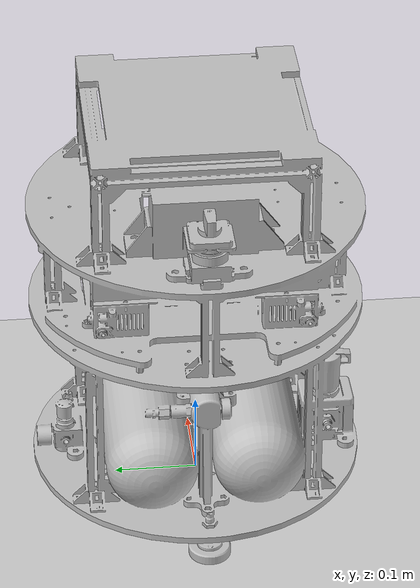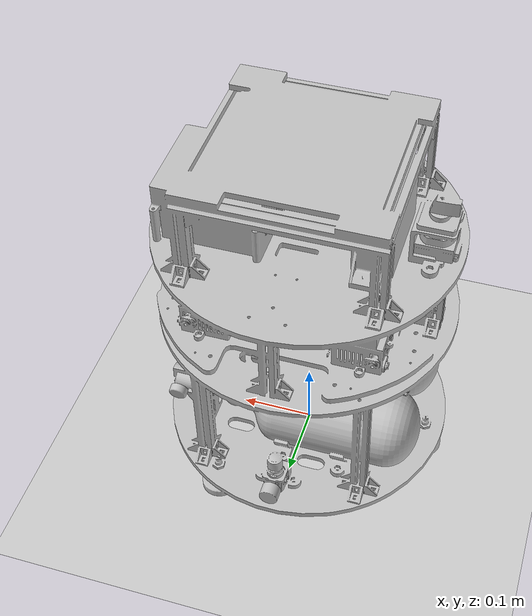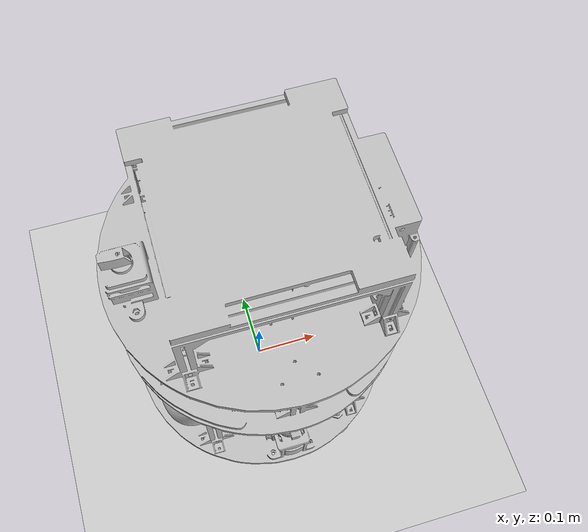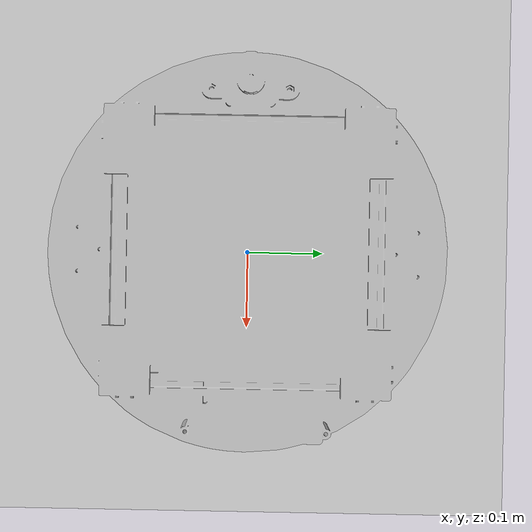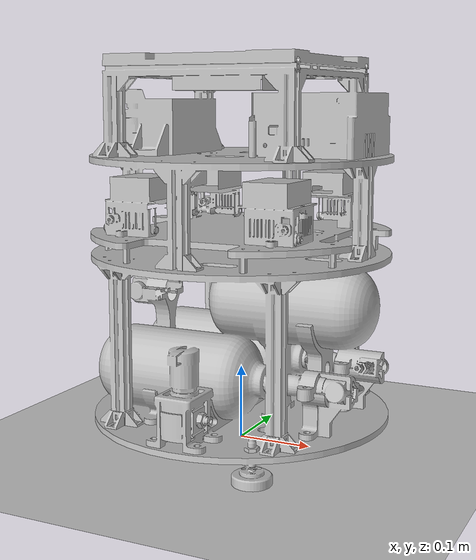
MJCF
<mujoco model="Samtmos">
    <compiler angle="radian" meshdir="meshes" texturedir="meshes" eulerseq="ZYX" autolimits="true"/>
    <option timestep="0.005" iterations="50" integrator="implicitfast" gravity="0 0 -9.8"/>
    <include file="meshes/skybox.xml"/>
    <asset>
        <texture type="2d" file="trossen_black.png"/>
        <material name="black" texture="trossen_black"/>

        <mesh name="base_link" file="base_link.stl" />
        <mesh name="link_1" file="link_1.stl" />
        <mesh name="link_2" file="link_2.stl" />
        <mesh name="link_3" file="link_3.stl" />
        <mesh name="link_4" file="link_4.stl" />
        <mesh name="link_5" file="link_5.stl" />
        <mesh name="link_6" file="link_6.stl" />
        <mesh name="carriage_left" file="carriage_left.stl" />
        <mesh name="carriage_right" file="carriage_right.stl" />
        <mesh name="gripper_right" file="gripper_right.stl" />
        <mesh name="gripper_left" file="gripper_left.stl" />
        <mesh name="camera_mount_d405" file="camera_mount_d405.stl" />
        <mesh name="atmos" file="Alpha3_v4_light_2.STL" scale="0.001 0.001 0.001"/>
    </asset>

    <default>
        <default class="wxai">
            <mesh scale="1.0 1.0 1.0"/>
            <joint axis="0 1 0" frictionloss="0.1" armature="0.1"/>
            <position kp="450" inheritrange="1" dampratio="0.95" forcerange="-55 55"/>
            <default class="visual">
                <geom type="mesh" contype="0" conaffinity="0" density="0" group="2" material="black"/>
            </default>
            <default class="collision">
                <geom group="3" type="mesh"/>
                <default class="sphere_collision">
                    <geom type="sphere" size="0.0006" rgba="1 0 0 1"/>
                </default>
            </default>
        </default>

        <default class="thruster">
            <geom type="sphere" size="0.001" rgba="1 1 1 1"/>
            <site size="0.01" rgba="1 1 1 1"/>
        </default>
        <default class="thrust">
            <general ctrlrange="0.0 1.75" ctrllimited="true" gear="0 0 1 0 0 0"/>
        </default>

    </default>

    <worldbody>
        <light name="sun" pos="0 -20 20" dir="0 1 -0.5" ambient="0.8 0.8 0.8" diffuse="0.6 0.6 0.6" specular="0.1 0.1 0.1"/>
        <geom name ="ground" type="plane" size="0 0 1" rgba="0.8 0.8 0.8 1" friction="0.0005 0.00000001 0.00000001"/>
        <!-- Optional secondary light for soft ambient effect -->
        <camera name="teleoperator_pov" pos="0 -3 0.685" xyaxes="1 0 0 0 0.2 .8" fovy="53.13" resolution="640 640" mode="targetbody"/>
        <body name="atmos" pos="0.0 0.0 0.0">
            <inertial pos="0 0 0.25428969" xyaxes="0 0 1 -1 0 0" mass="16.8" diaginertia="0.297 0.51 0.56"/>
            <joint name="atmos_free" type="free" damping="0.0000001"/>
            <geom type="mesh" rgba="0.752941 0.752941 0.752941 1" mesh="atmos" class="visual" friction="0.0005 0.00000001 0.00000001"/>
            <geom type="cylinder" rgba="0.752941 0.752941 0.752941 1" size="0.4 0.0" fromto="0 0 0 0 0 0.5" class="collision" friction="0.00005 0.00000001 0.00000001"/>
            <site name="thrust_site_FR" rgba="1 1 1 1" size="0.0001" pos="0.137 -0.12 0.29757938" xyaxes="0 -1 0 0 0 1"/>
            <site name="thrust_site_FL" rgba="1 1 1 1" size="0.0001" pos="0.137 0.12 0.29757938" xyaxes="0 -1 0 0 0 1"/>
            <site name="thrust_site_BR" rgba="1 1 1 1" size="0.0001" pos="-0.137 -0.12 0.29757938" xyaxes="0 1 0 0 0 1"/>
            <site name="thrust_site_BL" rgba="1 1 1 1" size="0.0001" pos="-0.137 0.12 0.29757938" xyaxes="0 1 0 0 0 1"/>
            <site name="thrust_site_RF" rgba="1 1 1 1" size="0.0001" pos="0.12 -0.137 0.30957938" xyaxes="0 0 1 1 0 0"/>
            <site name="thrust_site_LF" rgba="1 1 1 1" size="0.0001" pos="0.12 0.137 0.30957938" xyaxes="0 0 1 -1 0 0"/>
            <site name="thrust_site_RB" rgba="1 1 1 1" size="0.0001" pos="-0.12 -0.137 0.30957938" xyaxes="0 0 1 1 0 0"/>
            <site name="thrust_site_LB" rgba="1 1 1 1" size="0.0001" pos="-0.12 0.137 0.30957938" xyaxes="0 0 1 -1 0 0"/>
            <!--gravcomp="1">-->
            <!--gravcomp="1">-->
                <!--gravcomp="1">-->
                <!--gravcomp="1">-->
                   <!--gravcomp="1">-->
                   <!--gravcomp="1">-->
                        <!--gravcomp="1">-->
                        <!--gravcomp="1">-->

        </body>
    </worldbody>
    <actuator>
        <general name="thruster_FR" site="thrust_site_FR" class="thrust"/>
        <general name="thruster_FL" site="thrust_site_FL" class="thrust"/>
        <general name="thruster_BR" site="thrust_site_BR" class="thrust"/>
        <general name="thruster_BL" site="thrust_site_BL" class="thrust"/>
        <general name="thruster_RF" site="thrust_site_RF" class="thrust"/>
        <general name="thruster_LF" site="thrust_site_LF" class="thrust"/>
        <general name="thruster_RB" site="thrust_site_RB" class="thrust"/>
        <general name="thruster_LB" site="thrust_site_LB" class="thrust"/>
    </actuator>
</mujoco>

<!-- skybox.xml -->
<mujoco>
  <asset>
      <texture name="skybox" type="skybox" builtin="gradient" rgb1=".4 .6 .8" rgb2="0 0 0"
               width="1024" height="1024" mark="random" markrgb="1 1 1"/>
  </asset>
</mujoco>
